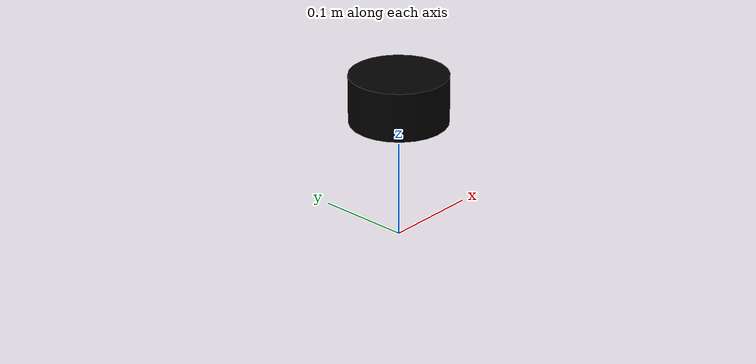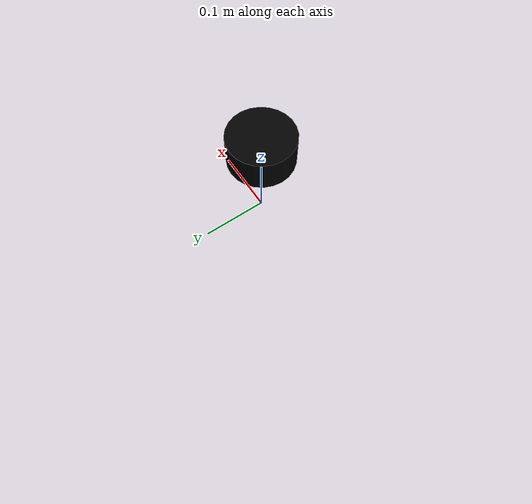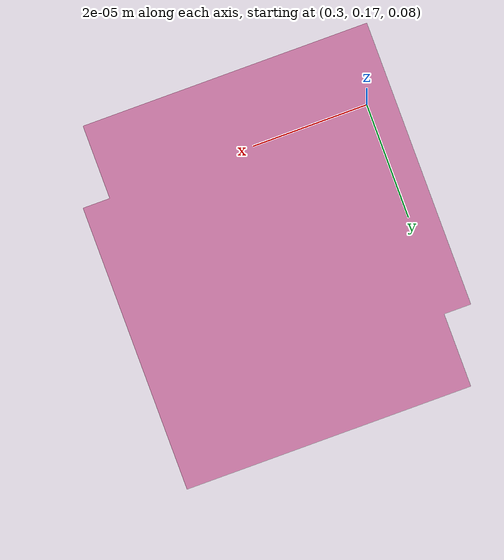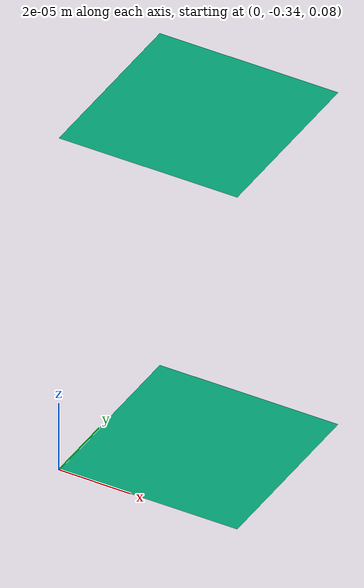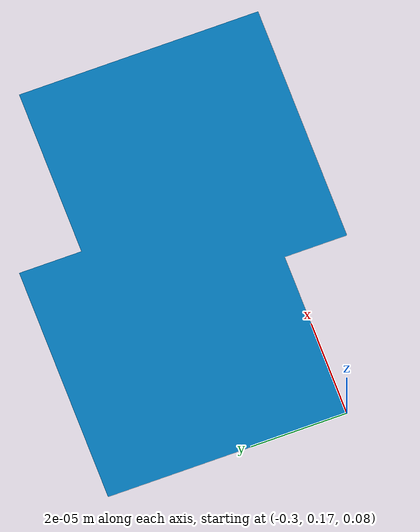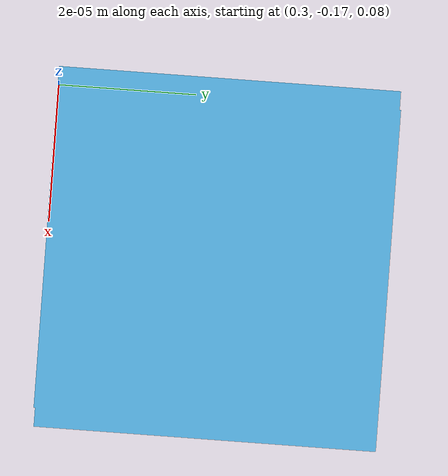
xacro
<?xml version="1.0"?>
<robot xmlns:xacro="http://www.ros.org/wiki/xacro" name="vectorsense_drone">

  <!-- THE GHOST CORE: Mathematically Perfect Physics Skeleton -->
  <link name="base_link">
    <!-- PHYSICS CORE: Zero-Visual, Perfectly Symmetric Intertials -->
    <inertial>
      <origin xyz="0 0 0" rpy="0 0 0"/>
      <mass value="2.5"/>
      <inertia ixx="0.03" ixy="0" ixz="0" iyy="0.03" iyz="0" izz="0.06"/>
    </inertial>

    <!-- COLLISION CORE: Primitive-only to prevent mesh shears -->
    <collision name="base_collision">
      <origin xyz="0 0 0" rpy="0 0 0"/>
      <geometry>
        <box size="0.2 0.2 0.1"/>
      </geometry>
    </collision>

    <!-- VISUAL SKINS: Weightless CAD layers (No Collision / No Inertial) -->
    <visual name="skin_base">
      <geometry>
        <mesh filename="package://vectorsense_megacomplex/meshes/DroneFYDPBase.stl" scale="0.001 0.001 0.001"/>
      </geometry>
    </visual>

    <visual name="skin_xbeam">
      <origin xyz="0 0 0.05" rpy="0 0 0"/>
      <geometry>
        <mesh filename="package://vectorsense_megacomplex/meshes/Xbeam.stl" scale="0.001 0.001 0.001"/>
      </geometry>
    </visual>

    <visual name="skin_beam180">
      <origin xyz="0 0 0.05" rpy="0 0 1.5708"/>
      <geometry>
        <mesh filename="package://vectorsense_megacomplex/meshes/180beam.stl" scale="0.001 0.001 0.001"/>
      </geometry>
    </visual>

    <visual name="skin_top_plate">
      <origin xyz="0 0 0.1" rpy="0 0 0"/>
      <geometry>
        <mesh filename="package://vectorsense_megacomplex/meshes/top_plate.stl" scale="0.001 0.001 0.001"/>
      </geometry>
    </visual>
  </link>

  <!-- MOTORS: Exact Symmetry (Hexacopter configuration) -->
  <xacro:macro name="motor" params="name x y index direction">
    <link name="motor_${name}">
      <visual>
        <geometry>
          <mesh filename="package://vectorsense_megacomplex/meshes/motor_attachment.stl" scale="0.001 0.001 0.001"/>
        </geometry>
      </visual>
      <inertial>
        <mass value="0.001"/>
        <inertia ixx="0.0001" ixy="0" ixz="0" iyy="0.0001" iyz="0" izz="0.0001"/>
      </inertial>
    </link>

    <joint name="motor_${name}_joint" type="continuous">
      <parent link="base_link"/>
      <child link="motor_${name}"/>
      <origin xyz="${x} ${y} 0.08" rpy="0 0 0"/>
      <axis xyz="0 0 1"/>
    </joint>

    <gazebo>
      <plugin filename="gz-sim-multicopter-motor-model-system" name="gz::sim::systems::MulticopterMotorModel">
        <robotNamespace>vectorsense</robotNamespace>
        <jointName>motor_${name}_joint</jointName>
        <linkName>motor_${name}</linkName>
        <turningDirection>${direction}</turningDirection>
        <timeConstantUp>0.0125</timeConstantUp>
        <timeConstantDown>0.025</timeConstantDown>
        <maxRotVelocity>1500</maxRotVelocity>
        <motorConstant>8.54858e-04</motorConstant>
        <momentConstant>0.016</momentConstant>
        <commandSubTopic>command/motor_speed</commandSubTopic>
        <motorNumber>${index}</motorNumber>
        <rotorDragCoefficient>8.06428e-05</rotorDragCoefficient>
        <rollingMomentCoefficient>1e-06</rollingMomentCoefficient>
        <rotorVelocitySlowdownSim>10</rotorVelocitySlowdownSim>
      </plugin>
    </gazebo>
  </xacro:macro>

  <!-- Hexacopter Arms (60 deg separation) -->
  <xacro:motor name="front_right" x="0.3" y="-0.17" index="0" direction="ccw"/>
  <xacro:motor name="right" x="0" y="-0.34" index="1" direction="cw"/>
  <xacro:motor name="back_right" x="-0.3" y="-0.17" index="2" direction="ccw"/>
  <xacro:motor name="back_left" x="-0.3" y="0.17" index="3" direction="cw"/>
  <xacro:motor name="left" x="0" y="0.34" index="4" direction="ccw"/>
  <xacro:motor name="front_left" x="0.3" y="0.17" index="5" direction="cw"/>

  <!-- SENSING PAYLOAD -->
  <link name="lidar_link">
    <visual>
      <geometry><cylinder radius="0.05" length="0.05"/></geometry>
      <material name="black"><color rgba="0 0 0 1"/></material>
    </visual>
  </link>
  <joint name="lidar_joint" type="fixed">
    <parent link="base_link"/>
    <child link="lidar_link"/>
    <origin xyz="0 0 0.15" rpy="0 0 0"/>
  </joint>

  <gazebo reference="lidar_link">
    <sensor name="gpu_lidar" type="gpu_lidar">
      <update_rate>10</update_rate>
      <lidar>
        <scan>
          <horizontal>
            <samples>360</samples>
            <resolution>1</resolution>
            <min_angle>-3.14159</min_angle>
            <max_angle>3.14159</max_angle>
          </horizontal>
        </scan>
        <range>
          <min>0.2</min>
          <max>30.0</max>
        </range>
      </lidar>
      <gz_frame_id>lidar_link</gz_frame_id>
    </sensor>
  </gazebo>

  <gazebo>
    <plugin filename="gz-sim-multicopter-velocity-control-system" name="gz::sim::systems::MulticopterVelocityControl">
      <robotNamespace>vectorsense</robotNamespace>
      <commandSubTopic>cmd_vel</commandSubTopic>
      <enableAngleControl>true</enableAngleControl>
      <enableVelocityControl>true</enableVelocityControl>
      <maximumLinearVelocity>15.0</maximumLinearVelocity>
      <maximumAngularVelocity>5.0</maximumAngularVelocity>
    </plugin>

    <plugin filename="gz-sim-odometry-publisher-system" name="gz::sim::systems::OdometryPublisher">
      <dimensions>3</dimensions>
    </plugin>

    <plugin filename="gz-sim-imu-system" name="gz::sim::systems::Imu">
    </plugin>
  </gazebo>

</robot>
